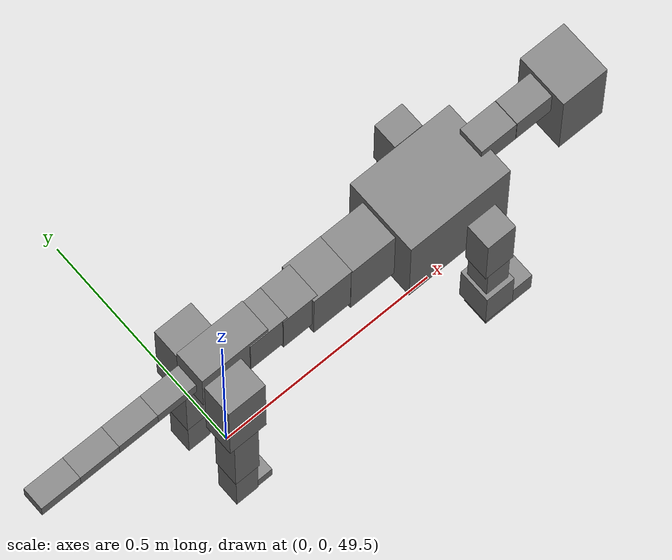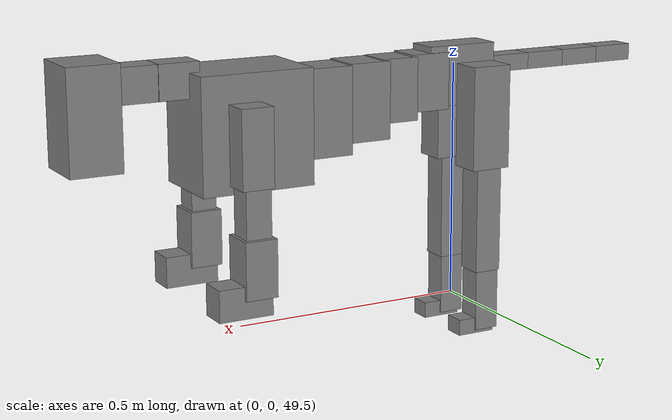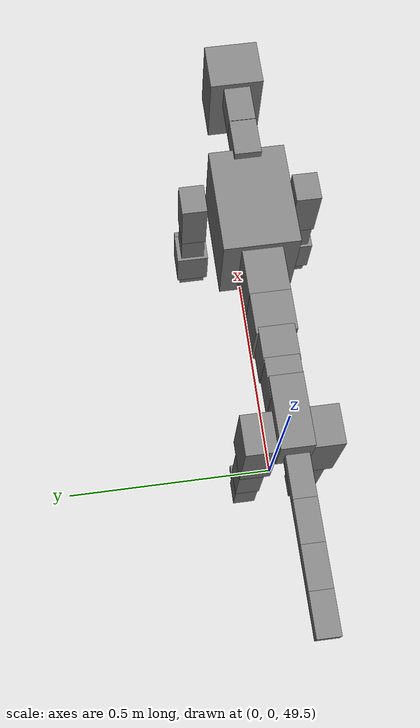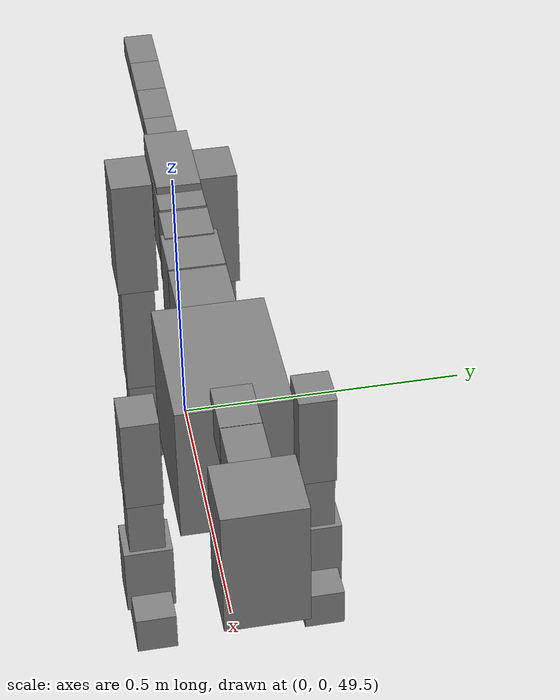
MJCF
<mujoco model="dog">

    <default>
        <joint armature="0.02" stiffness="1" damping="0.2" limited="true"/>
        <geom condim="3" friction="1 0.05 0.05" margin="0.01"/>
        <motor ctrllimited="true" ctrlrange="-1.0 1.0" forcelimited="true" gear="50"/>
    </default>

    <compiler inertiafromgeom="true" angle="radian"/>

    <option timestep="0.016" iterations="50" tolerance="1e-10" solver="Newton" jacobian="dense" cone="pyramidal"/>

    <size nconmax="20000" njmax="60000" nstack="5000000"/>
    <visual>
        <map force="0.1" zfar="30"/>
        <rgba haze="0.15 0.25 0.35 1"/>
        <quality shadowsize="2048"/>
        <global offwidth="800" offheight="800"/>
    </visual>

    <asset>
        <texture type="skybox" builtin="gradient" rgb1="0.3 0.5 0.7" rgb2="0 0 0" width="512" height="512"/>
        <texture name="texplane" type="2d" builtin="checker" rgb1=".2 .3 .4" rgb2=".1 0.15 0.2" width="512" height="512"
                 mark="cross" markrgb=".8 .8 .8"/>
        <texture name="texgeom" type="cube" builtin="flat" mark="cross" width="127" height="1278" rgb1="0.8 0.6 0.4"
                 rgb2="0.8 0.6 0.4" markrgb="1 1 1" random="0.01"/>

        <material name="matplane" reflectance="0.3" texture="texplane" texrepeat="1 1" texuniform="true"/>
        <material name="matgeom" texture="texgeom" texuniform="true" rgba="0.8 0.6 .4 1"/>
    </asset>

    <worldbody>
        <geom name="floor" pos="0 0 0" size="0 0 .25" type="plane" material="matplane" condim="3"/>

        <light directional="false" diffuse=".2 .2 .2" specular="0 0 0" pos="0 0 5" dir="0 0 -1" castshadow="false"/>
        <light mode="targetbodycom" target="torso" directional="false" diffuse=".8 .8 .8" specular="0.3 0.3 0.3"
               pos="0 0 4.0" dir="0 0 -1"/>

        <body name="root" pos="0 0 50">
            <freejoint name="root_1"/>
            <geom type="box" pos="0 0 -0.02" size="0.0774  0.0358  0.063" density="2030"/>

            <body name="spine1" pos="0.054 0 0">
                <joint name="spine1_y" axis="0 1 0" range="0 0.7" limited="true"/>
                <geom type="box" pos="0.02375 0 -0.03" size="0.04375  0.0375  0.05985" density="2030"/>

                <body name="spine2" pos="0.0612 0 0">
                    <joint name="spine2_y" axis="0 1 0" range="-0.15 0.15" limited="true"/>
                    <geom type="box" pos="0.03555  0  -0.04" size="0.04055  0.039  0.06615" density="2030"/>

                    <body name="spine3" pos="0.0730 0 0">
                        <joint name="spine3_y" axis="0 1 0" range="-0.15 0.15" limited="true"/>
                        <geom type="box" pos="0.03555  0  -0.057" size="0.04555  0.0445  0.081" density="2030"/>

                        <body name="spine4" pos="0.0780 0 0">
                            <joint name="spine4_y" axis="0 1 0" range="-0.15 0.15" limited="true"/>
                            <geom type="box" pos="0.05265  0  -0.07" size="0.05265  0.045  0.09135" density="2030"/>

                            <body name="torso" pos="0.1082 0 0">
                                <joint name="torso_y" axis="0 1 0" range="-0.15 0.15" limited="true"/>
                                <geom type="box" pos="0.11925  0  -0.085" size="0.11925  0.085  0.11745"
                                      density="2030"/>

                                <body name="neck1" pos="0.2160  0   0.0180">
                                    <joint name="neck1_y" axis="0 1 0" range="-1.2  -1" limited="true"/>
                                    <geom type="box" pos="0.0423  0  0" size="0.0423  0.03  0.036" density="2325"/>

                                    <body name="neck2" pos="0.0853  0  0">
                                        <joint name="neck2_y" axis="0 1 0" range="0.1  0" limited="true"/>
                                        <geom type="box" pos="0.0423  0  0" size="0.0423  0.03  0.036" density="2325"/>

                                        <body name="head" pos="0.0853  0  0">
                                            <joint name="head_y" axis="0 1 0" range="-0.3  -0.2" limited="true"/>
                                            <geom type="box" pos="0.0531  0  -0.055" size="0.0531  0.06  0.1044"
                                                  density="4030"/>

                                        </body>
                                    </body>
                                </body>

                                <body name="front_shoulder" pos="0.156  0   -0.0480">
                                    <joint name="front_shoulder_y" axis="0 1 0" range="-1 1.5" limited="true"/>
                                    <geom type="box" pos="0 0.13 -0.0526" size="0.0334  0.0286  0.0793" density="1158"/>
                                    <geom type="box" pos="0 -0.13 -0.0526" size="0.0334  0.0286  0.0793"
                                          density="1158"/>

                                    <body name="front_elbow" pos="0  0  -0.1053">
                                        <joint name="front_elbow_y" axis="0 1 0" range="-2 0" limited="true"/>
                                        <geom type="box" pos="0 0.13 -0.0682" size="0.0267  0.0272  0.0682"
                                              density="1081"/>
                                        <geom type="box" pos="0 -0.13 -0.0682" size="0.0267  0.0272  0.0682"
                                              density="1081"/>

                                        <body name="front_wrist" pos="0  0  -0.1364">
                                            <joint name="front_wrist_y" axis="0 1 0" range="-0.2 0" limited="true"/>
                                            <geom type="box" pos="0 0.13 -0.0451" size="0.0336  0.0373  0.0583"
                                                  density="1664"/>
                                            <geom type="box" pos="0 -0.13 -0.0451" size="0.0336  0.0373  0.0583"
                                                  density="1664"/>

                                            <body name="front_finger_end" pos="0  0  -0.0903">
                                                <joint name="front_finger_y" axis="0 1 0" range="-0.4 1"
                                                       limited="true"/>
                                                <geom type="box" pos="0.0308  0.13  -0.0173"
                                                      size="0.0566  0.0308  0.0323" density="1515"/>
                                                <geom type="box" pos="0.0308  -0.13  -0.0173"
                                                      size="0.0566  0.0308  0.0323" density="1515"/>

                                            </body>

                                        </body>
                                    </body>
                                </body>

                            </body>
                        </body>
                    </body>
                </body>
            </body>

            <body name="back_hip" pos="-0.03 0 -0.018">
                <joint name="back_hip_y" axis="0 1 0" range="-1.5 0.3" limited="true"/>
                <geom type="box" pos="0 0.07 -0.0858" size="0.0433  0.0340  0.1086" density="1154"/>
                <geom type="box" pos="0 -0.07 -0.0858" size="0.0433  0.0340  0.1086" density="1154"/>

                <body name="back_knee" pos="0  0  -0.1716">
                    <joint name="back_knee_y" axis="0 1 0" range="0 2.8" limited="true"/>
                    <geom type="box" pos="0 0.07 -0.1146" size="0.0288  0.0284  0.1302" density="1227"/>
                    <geom type="box" pos="0 -0.07 -0.1146" size="0.0288  0.0284  0.1302" density="1227"/>

                    <body name="back_ankle" pos="0  0  -0.2292">
                        <joint name="back_ankle_y" axis="0 1 0" range="-2.2 0" limited="true"/>
                        <geom type="box" pos="0 0.07 -0.0661" size="0.0264  0.0264  0.0773" density="1284"/>
                        <geom type="box" pos="0 -0.07 -0.0661" size="0.0264  0.0264  0.0773" density="1284"/>

                        <body name="back_toe_end" pos="0  0  -0.1321">
                            <joint name="back_toe_y" axis="0 1 0" range="-0.4 1" limited="true"/>
                            <geom type="box" pos="0.0226  0.07  -0.0018" size="0.0415  0.0226  0.0168" density="1515"/>
                            <geom type="box" pos="0.0226  -0.07  -0.0018" size="0.0415  0.0226  0.0168" density="1515"/>

                        </body>
                    </body>
                </body>
            </body>

            <body name="tail1" pos="-0.074 0 -0.006">
                <joint name="tail1_y" axis="0 1 0" range="-0.2 0.2" limited="true"/>
                <geom type="box" pos="-0.0536  0  0" size="0.045  0.025  0.0175" density="1587"/>

                <body name="tail2" pos="-0.09 0 0">
                    <joint name="tail2_y" axis="0 1 0" range="-0.2 0.2" limited="true"/>
                    <geom type="box" pos="-0.0536  0  0" size="0.045  0.025  0.0175" density="1587"/>

                    <body name="tail3" pos="-0.09 0 0">
                        <joint name="tail3_y" axis="0 1 0" range="-0.2 0.2" limited="true"/>
                        <geom type="box" pos="-0.0536  0  0" size="0.045  0.025  0.0175" density="1587"/>

                        <body name="tail4" pos="-0.09 0 0">
                            <joint name="tail4_y" axis="0 1 0" range="-0.2 0.2" limited="true"/>
                            <geom type="box" pos="-0.0536  0  0" size="0.045  0.025  0.0175" density="1587"/>

                        </body>
                    </body>
                </body>
            </body>
        </body>
    </worldbody>

    <actuator>
        <motor joint="spine1_y" forcerange="-150 150     "/>
        <motor joint="spine2_y" forcerange="-150 150     "/>
        <motor joint="spine3_y" forcerange="-150 150     "/>
        <motor joint="spine4_y" forcerange="-150 150     "/>
        <motor joint="torso_y" forcerange="-150 150     "/>
        <motor joint="neck1_y" forcerange="-100 100       "/>
        <motor joint="neck2_y" forcerange="-100 100       "/>
        <motor joint="head_y" forcerange="-150 150       "/>
        <motor joint="front_shoulder_y" forcerange="-190.32 100.10"/>
        <motor joint="front_elbow_y" forcerange="-113.00 185.17"/>
        <motor joint="front_wrist_y" forcerange="-149.18 149.52"/>
        <motor joint="front_finger_y" forcerange="-44.35 80.18"/>
        <motor joint="back_hip_y" forcerange="-255.36 397.85"/>
        <motor joint="back_knee_y" forcerange="-286.25 327.26"/>
        <motor joint="back_angle_y" forcerange="-179.60 142.16"/>
        <motor joint="back_toe_y" forcerange="-68.88 32.21"/>
        <motor joint="tail1_y" forcerange="-50 50     "/>
        <motor joint="tail2_y" forcerange="-50 50     "/>
        <motor joint="tail3_y" forcerange="-50 50     "/>
        <motor joint="tail4_y" forcerange="-50 50     "/>
    </actuator>
</mujoco>
